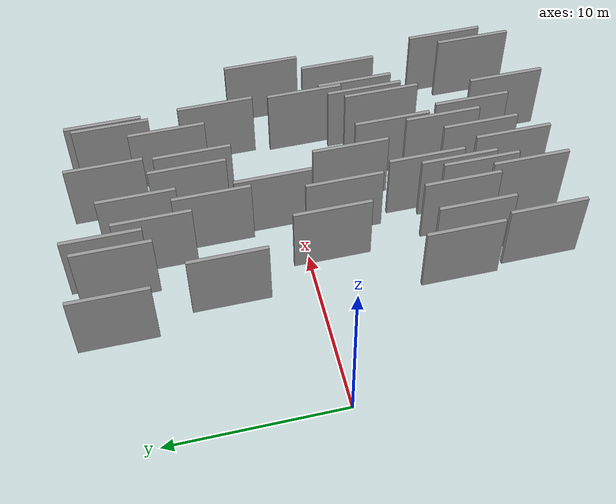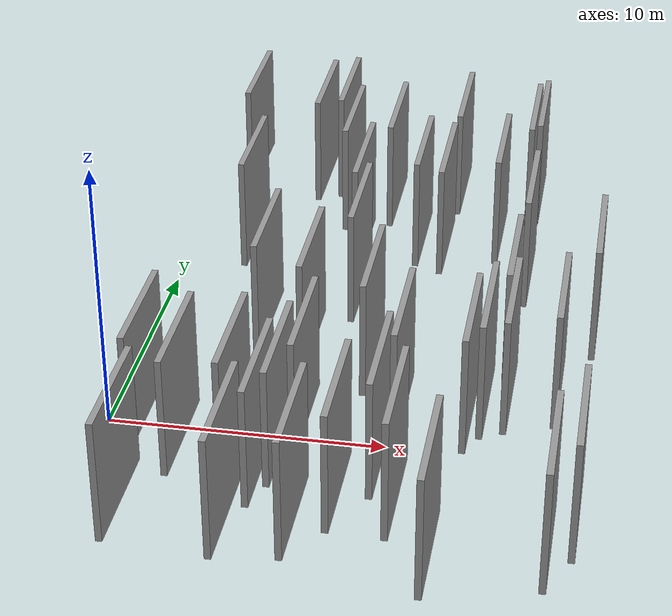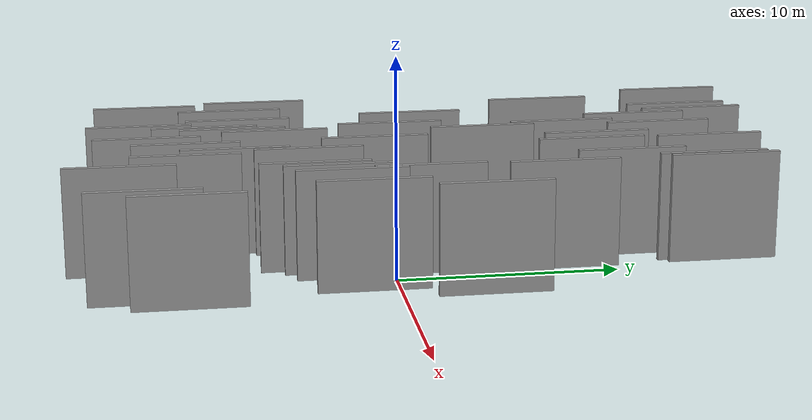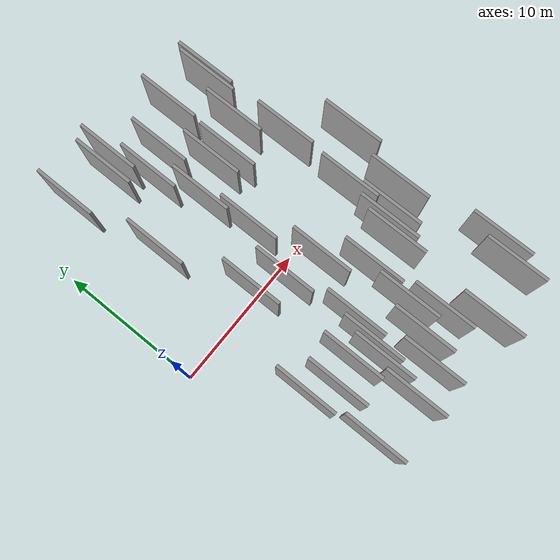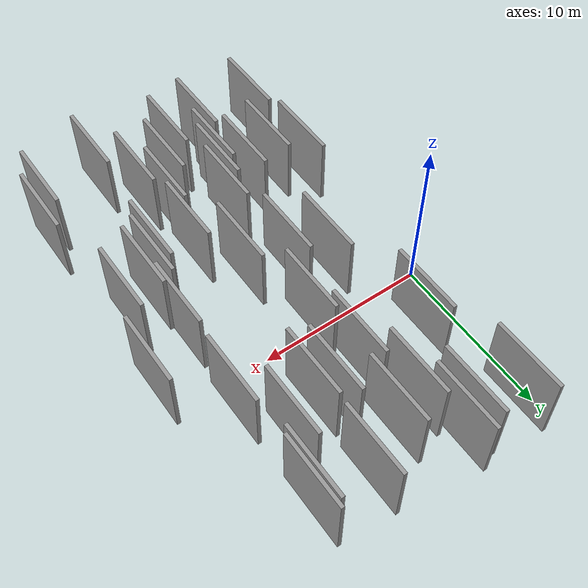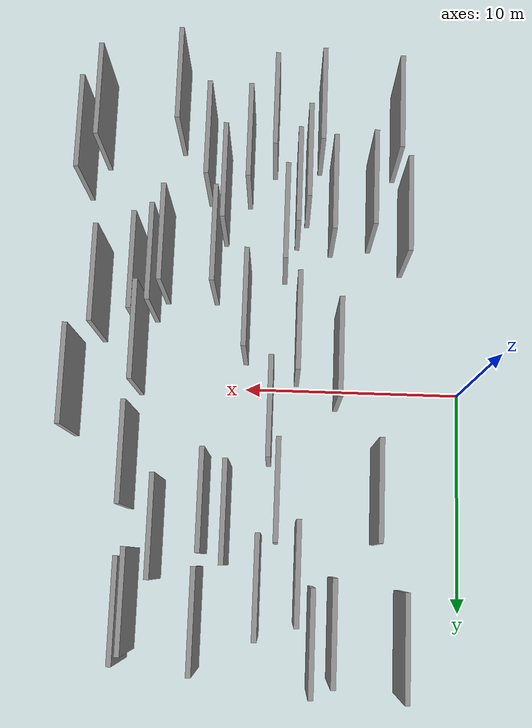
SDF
<sdf version="1.6">
 <world name="default">
  <scene>
   <sky><clouds><speed>12</speed></clouds></sky>
   <ambient>0.4 0.4 0.4 1</ambient>
   <background>0.7 0.7 0.7 1</background>
   <shadows>1</shadows>
  </scene>
  <gravity>0 0 -9.8066</gravity>
  <magnetic_field>6e-06 2.3e-05 -4.2e-05</magnetic_field>
  <physics default="0" name="default_physics" type="ode">
   <ode>
    <solver>
     <type>quick</type>
     <iters>10</iters>
     <sor>1.0</sor>
     <use_dynamic_moi_rescaling>0</use_dynamic_moi_rescaling>
    </solver>
    <constraints>
     <cfm>0</cfm>
     <erp>0.2</erp>
     <contact_max_correcting_vel>100</contact_max_correcting_vel>
     <contact_surface_layer>0.001</contact_surface_layer>
    </constraints>
   </ode>
   <max_step_size>0.004</max_step_size>
   <real_time_factor>1</real_time_factor>
   <real_time_update_rate>250</real_time_update_rate>
  </physics>
  <light name="sun" type="directional">
   <pose>0 0 10 0 0 0</pose>
   <diffuse>0.8 0.8 0.8 1</diffuse>
   <specular>0.2 0.2 0.2 1</specular>
   <attenuation>
    <range>1000</range>
    <constant>0.9</constant>
    <linear>0.01</linear>
    <quadratic>0.001</quadratic>
   </attenuation>
   <direction>-0.5 0.1 -0.9</direction>
  </light>
  <model name="grey_wall_1">
   <static>1</static>
   <pose>9.0233 8.9103 5.0 0.000000 0.000000 1.570796</pose>
   <link name="link">
    <pose>0 0 2.00 0 0 0</pose>
    <collision name="collision"><geometry><box><size>4.00 0.2 4.00</size></box></geometry></collision>
    <visual name="visual">
     <cast_shadows>0</cast_shadows>
     <geometry><box><size>4.00 0.2 4.00</size></box></geometry>
     <material>
      <script>
       <uri>model://grey_wall/materials/scripts</uri>
       <uri>model://grey_wall/materials/textures</uri>
       <name>vrc/grey_wall</name>
      </script>
     </material>
    </visual>
   </link>
  </model>
  <model name="grey_wall_2">
   <static>1</static>
   <pose>12.9015 -11.6569 5.0 0.000000 0.000000 1.570796</pose>
   <link name="link">
    <pose>0 0 2.00 0 0 0</pose>
    <collision name="collision"><geometry><box><size>4.00 0.2 4.00</size></box></geometry></collision>
    <visual name="visual">
     <cast_shadows>0</cast_shadows>
     <geometry><box><size>4.00 0.2 4.00</size></box></geometry>
     <material>
      <script>
       <uri>model://grey_wall/materials/scripts</uri>
       <uri>model://grey_wall/materials/textures</uri>
       <name>vrc/grey_wall</name>
      </script>
     </material>
    </visual>
   </link>
  </model>
  <model name="grey_wall_3">
   <static>1</static>
   <pose>3.3442 -6.3121 5.0 0.000000 0.000000 1.570796</pose>
   <link name="link">
    <pose>0 0 2.00 0 0 0</pose>
    <collision name="collision"><geometry><box><size>4.00 0.2 4.00</size></box></geometry></collision>
    <visual name="visual">
     <cast_shadows>0</cast_shadows>
     <geometry><box><size>4.00 0.2 4.00</size></box></geometry>
     <material>
      <script>
       <uri>model://grey_wall/materials/scripts</uri>
       <uri>model://grey_wall/materials/textures</uri>
       <name>vrc/grey_wall</name>
      </script>
     </material>
    </visual>
   </link>
  </model>
  <model name="grey_wall_4">
   <static>1</static>
   <pose>11.3757 10.2288 5.0 0.000000 0.000000 1.570796</pose>
   <link name="link">
    <pose>0 0 2.00 0 0 0</pose>
    <collision name="collision"><geometry><box><size>4.00 0.2 4.00</size></box></geometry></collision>
    <visual name="visual">
     <cast_shadows>0</cast_shadows>
     <geometry><box><size>4.00 0.2 4.00</size></box></geometry>
     <material>
      <script>
       <uri>model://grey_wall/materials/scripts</uri>
       <uri>model://grey_wall/materials/textures</uri>
       <name>vrc/grey_wall</name>
      </script>
     </material>
    </visual>
   </link>
  </model>
  <model name="grey_wall_5">
   <static>1</static>
   <pose>7.6818 -1.3672 5.0 0.000000 0.000000 1.570796</pose>
   <link name="link">
    <pose>0 0 2.00 0 0 0</pose>
    <collision name="collision"><geometry><box><size>4.00 0.2 4.00</size></box></geometry></collision>
    <visual name="visual">
     <cast_shadows>0</cast_shadows>
     <geometry><box><size>4.00 0.2 4.00</size></box></geometry>
     <material>
      <script>
       <uri>model://grey_wall/materials/scripts</uri>
       <uri>model://grey_wall/materials/textures</uri>
       <name>vrc/grey_wall</name>
      </script>
     </material>
    </visual>
   </link>
  </model>
  <model name="grey_wall_6">
   <static>1</static>
   <pose>4.3879 5.1636 5.0 0.000000 0.000000 1.570796</pose>
   <link name="link">
    <pose>0 0 2.00 0 0 0</pose>
    <collision name="collision"><geometry><box><size>4.00 0.2 4.00</size></box></geometry></collision>
    <visual name="visual">
     <cast_shadows>0</cast_shadows>
     <geometry><box><size>4.00 0.2 4.00</size></box></geometry>
     <material>
      <script>
       <uri>model://grey_wall/materials/scripts</uri>
       <uri>model://grey_wall/materials/textures</uri>
       <name>vrc/grey_wall</name>
      </script>
     </material>
    </visual>
   </link>
  </model>
  <model name="grey_wall_7">
   <static>1</static>
   <pose>13.1029 6.7793 5.0 0.000000 0.000000 1.570796</pose>
   <link name="link">
    <pose>0 0 2.00 0 0 0</pose>
    <collision name="collision"><geometry><box><size>4.00 0.2 4.00</size></box></geometry></collision>
    <visual name="visual">
     <cast_shadows>0</cast_shadows>
     <geometry><box><size>4.00 0.2 4.00</size></box></geometry>
     <material>
      <script>
       <uri>model://grey_wall/materials/scripts</uri>
       <uri>model://grey_wall/materials/textures</uri>
       <name>vrc/grey_wall</name>
      </script>
     </material>
    </visual>
   </link>
  </model>
  <model name="grey_wall_8">
   <static>1</static>
   <pose>16.1886 -10.8584 5.0 0.000000 0.000000 1.570796</pose>
   <link name="link">
    <pose>0 0 2.00 0 0 0</pose>
    <collision name="collision"><geometry><box><size>4.00 0.2 4.00</size></box></geometry></collision>
    <visual name="visual">
     <cast_shadows>0</cast_shadows>
     <geometry><box><size>4.00 0.2 4.00</size></box></geometry>
     <material>
      <script>
       <uri>model://grey_wall/materials/scripts</uri>
       <uri>model://grey_wall/materials/textures</uri>
       <name>vrc/grey_wall</name>
      </script>
     </material>
    </visual>
   </link>
  </model>
  <model name="grey_wall_9">
   <static>1</static>
   <pose>14.2049 -0.7971 5.0 0.000000 0.000000 1.570796</pose>
   <link name="link">
    <pose>0 0 2.00 0 0 0</pose>
    <collision name="collision"><geometry><box><size>4.00 0.2 4.00</size></box></geometry></collision>
    <visual name="visual">
     <cast_shadows>0</cast_shadows>
     <geometry><box><size>4.00 0.2 4.00</size></box></geometry>
     <material>
      <script>
       <uri>model://grey_wall/materials/scripts</uri>
       <uri>model://grey_wall/materials/textures</uri>
       <name>vrc/grey_wall</name>
      </script>
     </material>
    </visual>
   </link>
  </model>
  <model name="grey_wall_10">
   <static>1</static>
   <pose>6.9080 -10.9267 5.0 0.000000 0.000000 1.570796</pose>
   <link name="link">
    <pose>0 0 2.00 0 0 0</pose>
    <collision name="collision"><geometry><box><size>4.00 0.2 4.00</size></box></geometry></collision>
    <visual name="visual">
     <cast_shadows>0</cast_shadows>
     <geometry><box><size>4.00 0.2 4.00</size></box></geometry>
     <material>
      <script>
       <uri>model://grey_wall/materials/scripts</uri>
       <uri>model://grey_wall/materials/textures</uri>
       <name>vrc/grey_wall</name>
      </script>
     </material>
    </visual>
   </link>
  </model>
  <model name="grey_wall_11">
   <static>1</static>
   <pose>14.0257 9.5790 5.0 0.000000 0.000000 1.570796</pose>
   <link name="link">
    <pose>0 0 2.00 0 0 0</pose>
    <collision name="collision"><geometry><box><size>4.00 0.2 4.00</size></box></geometry></collision>
    <visual name="visual">
     <cast_shadows>0</cast_shadows>
     <geometry><box><size>4.00 0.2 4.00</size></box></geometry>
     <material>
      <script>
       <uri>model://grey_wall/materials/scripts</uri>
       <uri>model://grey_wall/materials/textures</uri>
       <name>vrc/grey_wall</name>
      </script>
     </material>
    </visual>
   </link>
  </model>
  <model name="grey_wall_12">
   <static>1</static>
   <pose>7.8219 -7.4114 5.0 0.000000 0.000000 1.570796</pose>
   <link name="link">
    <pose>0 0 2.00 0 0 0</pose>
    <collision name="collision"><geometry><box><size>4.00 0.2 4.00</size></box></geometry></collision>
    <visual name="visual">
     <cast_shadows>0</cast_shadows>
     <geometry><box><size>4.00 0.2 4.00</size></box></geometry>
     <material>
      <script>
       <uri>model://grey_wall/materials/scripts</uri>
       <uri>model://grey_wall/materials/textures</uri>
       <name>vrc/grey_wall</name>
      </script>
     </material>
    </visual>
   </link>
  </model>
  <model name="grey_wall_13">
   <static>1</static>
   <pose>8.2981 -5.8480 5.0 0.000000 0.000000 1.570796</pose>
   <link name="link">
    <pose>0 0 2.00 0 0 0</pose>
    <collision name="collision"><geometry><box><size>4.00 0.2 4.00</size></box></geometry></collision>
    <visual name="visual">
     <cast_shadows>0</cast_shadows>
     <geometry><box><size>4.00 0.2 4.00</size></box></geometry>
     <material>
      <script>
       <uri>model://grey_wall/materials/scripts</uri>
       <uri>model://grey_wall/materials/textures</uri>
       <name>vrc/grey_wall</name>
      </script>
     </material>
    </visual>
   </link>
  </model>
  <model name="grey_wall_14">
   <static>1</static>
   <pose>6.3659 -7.1379 5.0 0.000000 0.000000 1.570796</pose>
   <link name="link">
    <pose>0 0 2.00 0 0 0</pose>
    <collision name="collision"><geometry><box><size>4.00 0.2 4.00</size></box></geometry></collision>
    <visual name="visual">
     <cast_shadows>0</cast_shadows>
     <geometry><box><size>4.00 0.2 4.00</size></box></geometry>
     <material>
      <script>
       <uri>model://grey_wall/materials/scripts</uri>
       <uri>model://grey_wall/materials/textures</uri>
       <name>vrc/grey_wall</name>
      </script>
     </material>
    </visual>
   </link>
  </model>
  <model name="grey_wall_15">
   <static>1</static>
   <pose>4.7404 -7.3743 5.0 0.000000 0.000000 1.570796</pose>
   <link name="link">
    <pose>0 0 2.00 0 0 0</pose>
    <collision name="collision"><geometry><box><size>4.00 0.2 4.00</size></box></geometry></collision>
    <visual name="visual">
     <cast_shadows>0</cast_shadows>
     <geometry><box><size>4.00 0.2 4.00</size></box></geometry>
     <material>
      <script>
       <uri>model://grey_wall/materials/scripts</uri>
       <uri>model://grey_wall/materials/textures</uri>
       <name>vrc/grey_wall</name>
      </script>
     </material>
    </visual>
   </link>
  </model>
  <model name="grey_wall_16">
   <static>1</static>
   <pose>9.8407 -2.2318 5.0 0.000000 0.000000 1.570796</pose>
   <link name="link">
    <pose>0 0 2.00 0 0 0</pose>
    <collision name="collision"><geometry><box><size>4.00 0.2 4.00</size></box></geometry></collision>
    <visual name="visual">
     <cast_shadows>0</cast_shadows>
     <geometry><box><size>4.00 0.2 4.00</size></box></geometry>
     <material>
      <script>
       <uri>model://grey_wall/materials/scripts</uri>
       <uri>model://grey_wall/materials/textures</uri>
       <name>vrc/grey_wall</name>
      </script>
     </material>
    </visual>
   </link>
  </model>
  <model name="grey_wall_17">
   <static>1</static>
   <pose>13.2889 -4.8023 5.0 0.000000 0.000000 1.570796</pose>
   <link name="link">
    <pose>0 0 2.00 0 0 0</pose>
    <collision name="collision"><geometry><box><size>4.00 0.2 4.00</size></box></geometry></collision>
    <visual name="visual">
     <cast_shadows>0</cast_shadows>
     <geometry><box><size>4.00 0.2 4.00</size></box></geometry>
     <material>
      <script>
       <uri>model://grey_wall/materials/scripts</uri>
       <uri>model://grey_wall/materials/textures</uri>
       <name>vrc/grey_wall</name>
      </script>
     </material>
    </visual>
   </link>
  </model>
  <model name="grey_wall_18">
   <static>1</static>
   <pose>14.2999 9.9279 5.0 0.000000 0.000000 1.570796</pose>
   <link name="link">
    <pose>0 0 2.00 0 0 0</pose>
    <collision name="collision"><geometry><box><size>4.00 0.2 4.00</size></box></geometry></collision>
    <visual name="visual">
     <cast_shadows>0</cast_shadows>
     <geometry><box><size>4.00 0.2 4.00</size></box></geometry>
     <material>
      <script>
       <uri>model://grey_wall/materials/scripts</uri>
       <uri>model://grey_wall/materials/textures</uri>
       <name>vrc/grey_wall</name>
      </script>
     </material>
    </visual>
   </link>
  </model>
  <model name="grey_wall_19">
   <static>1</static>
   <pose>13.7115 -3.9789 5.0 0.000000 0.000000 1.570796</pose>
   <link name="link">
    <pose>0 0 2.00 0 0 0</pose>
    <collision name="collision"><geometry><box><size>4.00 0.2 4.00</size></box></geometry></collision>
    <visual name="visual">
     <cast_shadows>0</cast_shadows>
     <geometry><box><size>4.00 0.2 4.00</size></box></geometry>
     <material>
      <script>
       <uri>model://grey_wall/materials/scripts</uri>
       <uri>model://grey_wall/materials/textures</uri>
       <name>vrc/grey_wall</name>
      </script>
     </material>
    </visual>
   </link>
  </model>
  <model name="grey_wall_20">
   <static>1</static>
   <pose>11.6187 -9.3076 5.0 0.000000 0.000000 1.570796</pose>
   <link name="link">
    <pose>0 0 2.00 0 0 0</pose>
    <collision name="collision"><geometry><box><size>4.00 0.2 4.00</size></box></geometry></collision>
    <visual name="visual">
     <cast_shadows>0</cast_shadows>
     <geometry><box><size>4.00 0.2 4.00</size></box></geometry>
     <material>
      <script>
       <uri>model://grey_wall/materials/scripts</uri>
       <uri>model://grey_wall/materials/textures</uri>
       <name>vrc/grey_wall</name>
      </script>
     </material>
    </visual>
   </link>
  </model>
  <model name="grey_wall_21">
   <static>1</static>
   <pose>3.7084 -10.6750 5.0 0.000000 0.000000 1.570796</pose>
   <link name="link">
    <pose>0 0 2.00 0 0 0</pose>
    <collision name="collision"><geometry><box><size>4.00 0.2 4.00</size></box></geometry></collision>
    <visual name="visual">
     <cast_shadows>0</cast_shadows>
     <geometry><box><size>4.00 0.2 4.00</size></box></geometry>
     <material>
      <script>
       <uri>model://grey_wall/materials/scripts</uri>
       <uri>model://grey_wall/materials/textures</uri>
       <name>vrc/grey_wall</name>
      </script>
     </material>
    </visual>
   </link>
  </model>
  <model name="grey_wall_22">
   <static>1</static>
   <pose>3.3671 10.9305 5.0 0.000000 0.000000 1.570796</pose>
   <link name="link">
    <pose>0 0 2.00 0 0 0</pose>
    <collision name="collision"><geometry><box><size>4.00 0.2 4.00</size></box></geometry></collision>
    <visual name="visual">
     <cast_shadows>0</cast_shadows>
     <geometry><box><size>4.00 0.2 4.00</size></box></geometry>
     <material>
      <script>
       <uri>model://grey_wall/materials/scripts</uri>
       <uri>model://grey_wall/materials/textures</uri>
       <name>vrc/grey_wall</name>
      </script>
     </material>
    </visual>
   </link>
  </model>
  <model name="grey_wall_23">
   <static>1</static>
   <pose>10.3530 6.1501 5.0 0.000000 0.000000 1.570796</pose>
   <link name="link">
    <pose>0 0 2.00 0 0 0</pose>
    <collision name="collision"><geometry><box><size>4.00 0.2 4.00</size></box></geometry></collision>
    <visual name="visual">
     <cast_shadows>0</cast_shadows>
     <geometry><box><size>4.00 0.2 4.00</size></box></geometry>
     <material>
      <script>
       <uri>model://grey_wall/materials/scripts</uri>
       <uri>model://grey_wall/materials/textures</uri>
       <name>vrc/grey_wall</name>
      </script>
     </material>
    </visual>
   </link>
  </model>
  <model name="grey_wall_24">
   <static>1</static>
   <pose>11.2575 5.7337 5.0 0.000000 0.000000 1.570796</pose>
   <link name="link">
    <pose>0 0 2.00 0 0 0</pose>
    <collision name="collision"><geometry><box><size>4.00 0.2 4.00</size></box></geometry></collision>
    <visual name="visual">
     <cast_shadows>0</cast_shadows>
     <geometry><box><size>4.00 0.2 4.00</size></box></geometry>
     <material>
      <script>
       <uri>model://grey_wall/materials/scripts</uri>
       <uri>model://grey_wall/materials/textures</uri>
       <name>vrc/grey_wall</name>
      </script>
     </material>
    </visual>
   </link>
  </model>
  <model name="grey_wall_25">
   <static>1</static>
   <pose>7.4718 8.3551 5.0 0.000000 0.000000 1.570796</pose>
   <link name="link">
    <pose>0 0 2.00 0 0 0</pose>
    <collision name="collision"><geometry><box><size>4.00 0.2 4.00</size></box></geometry></collision>
    <visual name="visual">
     <cast_shadows>0</cast_shadows>
     <geometry><box><size>4.00 0.2 4.00</size></box></geometry>
     <material>
      <script>
       <uri>model://grey_wall/materials/scripts</uri>
       <uri>model://grey_wall/materials/textures</uri>
       <name>vrc/grey_wall</name>
      </script>
     </material>
    </visual>
   </link>
  </model>
  <model name="grey_wall_26">
   <static>1</static>
   <pose>9.9111 -9.2440 5.0 0.000000 0.000000 1.570796</pose>
   <link name="link">
    <pose>0 0 2.00 0 0 0</pose>
    <collision name="collision"><geometry><box><size>4.00 0.2 4.00</size></box></geometry></collision>
    <visual name="visual">
     <cast_shadows>0</cast_shadows>
     <geometry><box><size>4.00 0.2 4.00</size></box></geometry>
     <material>
      <script>
       <uri>model://grey_wall/materials/scripts</uri>
       <uri>model://grey_wall/materials/textures</uri>
       <name>vrc/grey_wall</name>
      </script>
     </material>
    </visual>
   </link>
  </model>
  <model name="grey_wall_27">
   <static>1</static>
   <pose>14.3718 4.0039 5.0 0.000000 0.000000 1.570796</pose>
   <link name="link">
    <pose>0 0 2.00 0 0 0</pose>
    <collision name="collision"><geometry><box><size>4.00 0.2 4.00</size></box></geometry></collision>
    <visual name="visual">
     <cast_shadows>0</cast_shadows>
     <geometry><box><size>4.00 0.2 4.00</size></box></geometry>
     <material>
      <script>
       <uri>model://grey_wall/materials/scripts</uri>
       <uri>model://grey_wall/materials/textures</uri>
       <name>vrc/grey_wall</name>
      </script>
     </material>
    </visual>
   </link>
  </model>
  <model name="grey_wall_28">
   <static>1</static>
   <pose>8.3450 5.2514 5.0 0.000000 0.000000 1.570796</pose>
   <link name="link">
    <pose>0 0 2.00 0 0 0</pose>
    <collision name="collision"><geometry><box><size>4.00 0.2 4.00</size></box></geometry></collision>
    <visual name="visual">
     <cast_shadows>0</cast_shadows>
     <geometry><box><size>4.00 0.2 4.00</size></box></geometry>
     <material>
      <script>
       <uri>model://grey_wall/materials/scripts</uri>
       <uri>model://grey_wall/materials/textures</uri>
       <name>vrc/grey_wall</name>
      </script>
     </material>
    </visual>
   </link>
  </model>
  <model name="grey_wall_29">
   <static>1</static>
   <pose>8.8608 -10.6576 5.0 0.000000 0.000000 1.570796</pose>
   <link name="link">
    <pose>0 0 2.00 0 0 0</pose>
    <collision name="collision"><geometry><box><size>4.00 0.2 4.00</size></box></geometry></collision>
    <visual name="visual">
     <cast_shadows>0</cast_shadows>
     <geometry><box><size>4.00 0.2 4.00</size></box></geometry>
     <material>
      <script>
       <uri>model://grey_wall/materials/scripts</uri>
       <uri>model://grey_wall/materials/textures</uri>
       <name>vrc/grey_wall</name>
      </script>
     </material>
    </visual>
   </link>
  </model>
  <model name="grey_wall_30">
   <static>1</static>
   <pose>11.1900 -4.8281 5.0 0.000000 0.000000 1.570796</pose>
   <link name="link">
    <pose>0 0 2.00 0 0 0</pose>
    <collision name="collision"><geometry><box><size>4.00 0.2 4.00</size></box></geometry></collision>
    <visual name="visual">
     <cast_shadows>0</cast_shadows>
     <geometry><box><size>4.00 0.2 4.00</size></box></geometry>
     <material>
      <script>
       <uri>model://grey_wall/materials/scripts</uri>
       <uri>model://grey_wall/materials/textures</uri>
       <name>vrc/grey_wall</name>
      </script>
     </material>
    </visual>
   </link>
  </model>
  <model name="grey_wall_31">
   <static>1</static>
   <pose>8.7339 2.0662 5.0 0.000000 0.000000 1.570796</pose>
   <link name="link">
    <pose>0 0 2.00 0 0 0</pose>
    <collision name="collision"><geometry><box><size>4.00 0.2 4.00</size></box></geometry></collision>
    <visual name="visual">
     <cast_shadows>0</cast_shadows>
     <geometry><box><size>4.00 0.2 4.00</size></box></geometry>
     <material>
      <script>
       <uri>model://grey_wall/materials/scripts</uri>
       <uri>model://grey_wall/materials/textures</uri>
       <name>vrc/grey_wall</name>
      </script>
     </material>
    </visual>
   </link>
  </model>
  <model name="grey_wall_32">
   <static>1</static>
   <pose>7.4187 -8.4634 5.0 0.000000 0.000000 1.570796</pose>
   <link name="link">
    <pose>0 0 2.00 0 0 0</pose>
    <collision name="collision"><geometry><box><size>4.00 0.2 4.00</size></box></geometry></collision>
    <visual name="visual">
     <cast_shadows>0</cast_shadows>
     <geometry><box><size>4.00 0.2 4.00</size></box></geometry>
     <material>
      <script>
       <uri>model://grey_wall/materials/scripts</uri>
       <uri>model://grey_wall/materials/textures</uri>
       <name>vrc/grey_wall</name>
      </script>
     </material>
    </visual>
   </link>
  </model>
  <model name="grey_wall_33">
   <static>1</static>
   <pose>16.8814 -9.4202 5.0 0.000000 0.000000 1.570796</pose>
   <link name="link">
    <pose>0 0 2.00 0 0 0</pose>
    <collision name="collision"><geometry><box><size>4.00 0.2 4.00</size></box></geometry></collision>
    <visual name="visual">
     <cast_shadows>0</cast_shadows>
     <geometry><box><size>4.00 0.2 4.00</size></box></geometry>
     <material>
      <script>
       <uri>model://grey_wall/materials/scripts</uri>
       <uri>model://grey_wall/materials/textures</uri>
       <name>vrc/grey_wall</name>
      </script>
     </material>
    </visual>
   </link>
  </model>
  <model name="grey_wall_34">
   <static>1</static>
   <pose>15.9137 -3.0446 5.0 0.000000 0.000000 1.570796</pose>
   <link name="link">
    <pose>0 0 2.00 0 0 0</pose>
    <collision name="collision"><geometry><box><size>4.00 0.2 4.00</size></box></geometry></collision>
    <visual name="visual">
     <cast_shadows>0</cast_shadows>
     <geometry><box><size>4.00 0.2 4.00</size></box></geometry>
     <material>
      <script>
       <uri>model://grey_wall/materials/scripts</uri>
       <uri>model://grey_wall/materials/textures</uri>
       <name>vrc/grey_wall</name>
      </script>
     </material>
    </visual>
   </link>
  </model>
  <model name="grey_wall_35">
   <static>1</static>
   <pose>16.8483 1.0429 5.0 0.000000 0.000000 1.570796</pose>
   <link name="link">
    <pose>0 0 2.00 0 0 0</pose>
    <collision name="collision"><geometry><box><size>4.00 0.2 4.00</size></box></geometry></collision>
    <visual name="visual">
     <cast_shadows>0</cast_shadows>
     <geometry><box><size>4.00 0.2 4.00</size></box></geometry>
     <material>
      <script>
       <uri>model://grey_wall/materials/scripts</uri>
       <uri>model://grey_wall/materials/textures</uri>
       <name>vrc/grey_wall</name>
      </script>
     </material>
    </visual>
   </link>
  </model>
  <model name="grey_wall_36">
   <static>1</static>
   <pose>10.8864 -7.4904 5.0 0.000000 0.000000 1.570796</pose>
   <link name="link">
    <pose>0 0 2.00 0 0 0</pose>
    <collision name="collision"><geometry><box><size>4.00 0.2 4.00</size></box></geometry></collision>
    <visual name="visual">
     <cast_shadows>0</cast_shadows>
     <geometry><box><size>4.00 0.2 4.00</size></box></geometry>
     <material>
      <script>
       <uri>model://grey_wall/materials/scripts</uri>
       <uri>model://grey_wall/materials/textures</uri>
       <name>vrc/grey_wall</name>
      </script>
     </material>
    </visual>
   </link>
  </model>
  <model name="grey_wall_37">
   <static>1</static>
   <pose>6.0169 -0.3526 5.0 0.000000 0.000000 1.570796</pose>
   <link name="link">
    <pose>0 0 2.00 0 0 0</pose>
    <collision name="collision"><geometry><box><size>4.00 0.2 4.00</size></box></geometry></collision>
    <visual name="visual">
     <cast_shadows>0</cast_shadows>
     <geometry><box><size>4.00 0.2 4.00</size></box></geometry>
     <material>
      <script>
       <uri>model://grey_wall/materials/scripts</uri>
       <uri>model://grey_wall/materials/textures</uri>
       <name>vrc/grey_wall</name>
      </script>
     </material>
    </visual>
   </link>
  </model>
  <model name="grey_wall_38">
   <static>1</static>
   <pose>6.0730 10.4849 5.0 0.000000 0.000000 1.570796</pose>
   <link name="link">
    <pose>0 0 2.00 0 0 0</pose>
    <collision name="collision"><geometry><box><size>4.00 0.2 4.00</size></box></geometry></collision>
    <visual name="visual">
     <cast_shadows>0</cast_shadows>
     <geometry><box><size>4.00 0.2 4.00</size></box></geometry>
     <material>
      <script>
       <uri>model://grey_wall/materials/scripts</uri>
       <uri>model://grey_wall/materials/textures</uri>
       <name>vrc/grey_wall</name>
      </script>
     </material>
    </visual>
   </link>
  </model>
  <model name="grey_wall_39">
   <static>1</static>
   <pose>6.8867 10.8745 5.0 0.000000 0.000000 1.570796</pose>
   <link name="link">
    <pose>0 0 2.00 0 0 0</pose>
    <collision name="collision"><geometry><box><size>4.00 0.2 4.00</size></box></geometry></collision>
    <visual name="visual">
     <cast_shadows>0</cast_shadows>
     <geometry><box><size>4.00 0.2 4.00</size></box></geometry>
     <material>
      <script>
       <uri>model://grey_wall/materials/scripts</uri>
       <uri>model://grey_wall/materials/textures</uri>
       <name>vrc/grey_wall</name>
      </script>
     </material>
    </visual>
   </link>
  </model>
  <model name="grey_wall_40">
   <static>1</static>
   <pose>14.4091 -3.6096 5.0 0.000000 0.000000 1.570796</pose>
   <link name="link">
    <pose>0 0 2.00 0 0 0</pose>
    <collision name="collision"><geometry><box><size>4.00 0.2 4.00</size></box></geometry></collision>
    <visual name="visual">
     <cast_shadows>0</cast_shadows>
     <geometry><box><size>4.00 0.2 4.00</size></box></geometry>
     <material>
      <script>
       <uri>model://grey_wall/materials/scripts</uri>
       <uri>model://grey_wall/materials/textures</uri>
       <name>vrc/grey_wall</name>
      </script>
     </material>
    </visual>
   </link>
  </model>
 </world>
</sdf>
